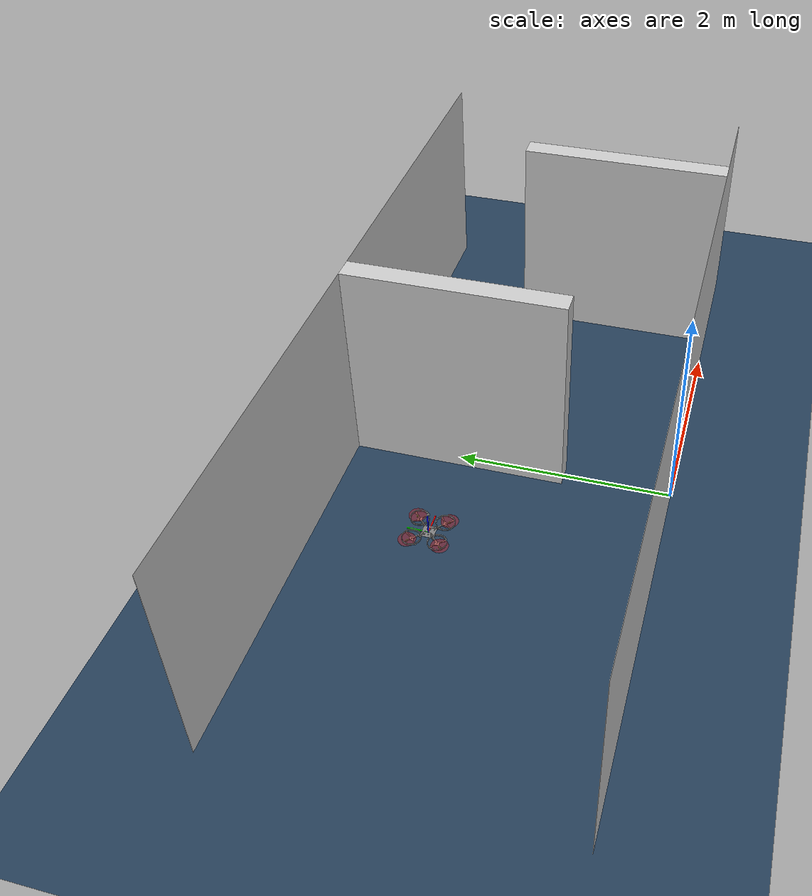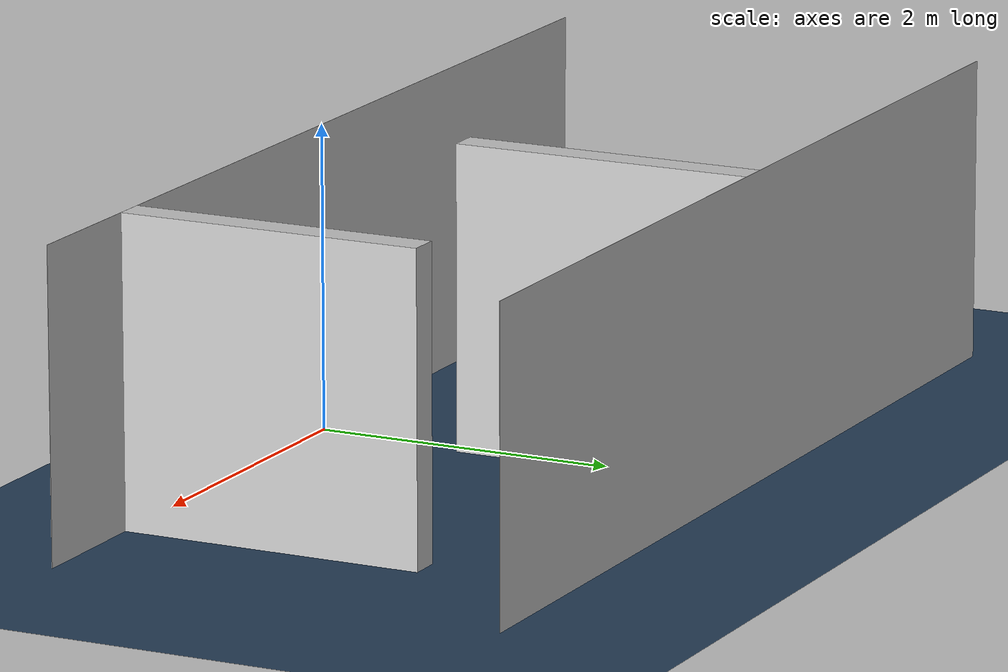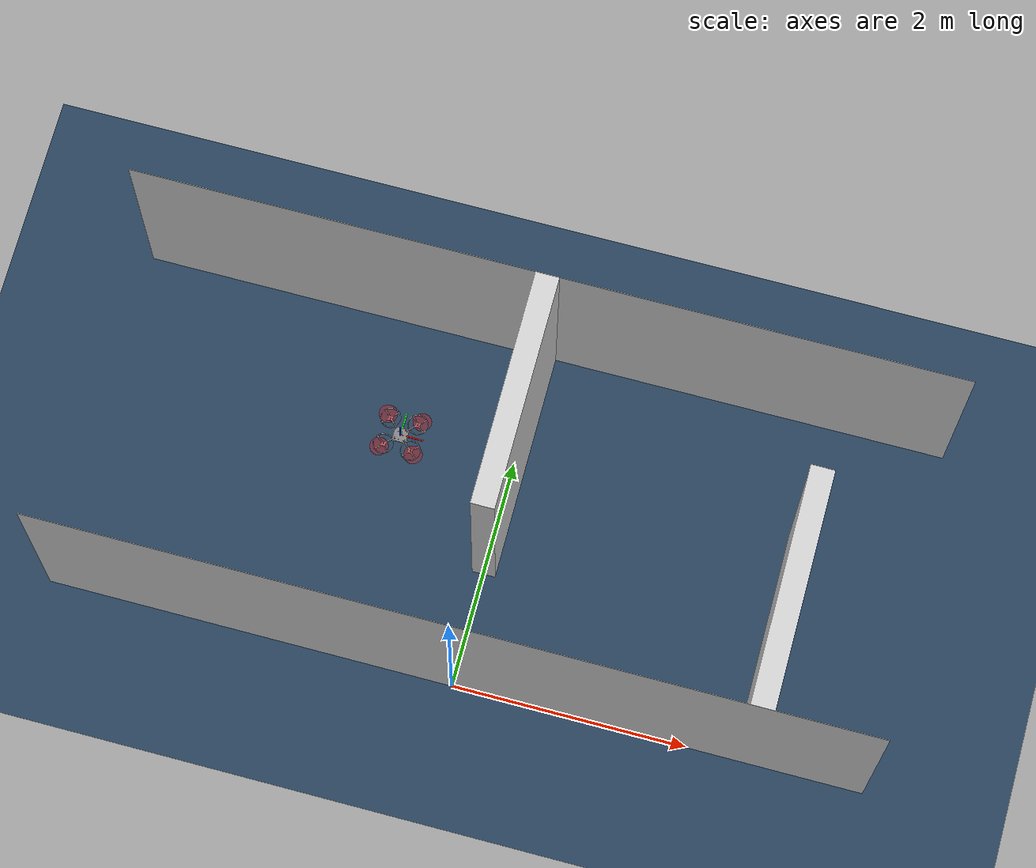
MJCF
<mujoco model="DART scene">
  <include file="dart.xml"/>

  <statistic center="0 0 0.1" extent="0.6" meansize=".05"/>

  <visual>
    <headlight diffuse="0.6 0.6 0.6" ambient="0.3 0.3 0.3" specular="0 0 0"/>
    <rgba haze="0.15 0.25 0.35 1"/>
    <global azimuth="-20" elevation="-20" ellipsoidinertia="true"/>
  </visual>

  <asset>
    <texture type="skybox" builtin="gradient" rgb1="0.3 0.5 0.7" rgb2="0 0 0" width="512" height="3072"/>
    <texture type="2d" name="groundplane" builtin="checker" mark="edge" rgb1="0.2 0.3 0.4" rgb2="0.1 0.2 0.3"
      markrgb="0.8 0.8 0.8" width="300" height="300"/>
    <material name="groundplane" texture="groundplane" texuniform="true" texrepeat="5 5" reflectance="0.2"/>
  </asset>

  <worldbody>
    <light pos="0 0 1.5" dir="0 0 -1" directional="true"/>
    <geom name="floor" size="0 0 0.05" type="plane" material="groundplane" solimp=".99 .99 .01" solref="0.001 1"/>
  </worldbody>
</mujoco>

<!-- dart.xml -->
<mujoco model="dart">
	<compiler inertiafromgeom="false" coordinate="local"/>
	<option	timestep="0.005" gravity="0 0 -9.81" density="1" viscosity="1e-5" integrator="RK4" />

	<asset>
		<mesh name="DART_mesh" file="dart2.stl" scale="0.001 0.001 0.001"/>
	</asset>

	<worldbody>
		<body name="quadrotor" pos="-1.0 2.0 0.0125">
			<inertial pos="0.0 0.0 0.0" mass="1.25" diaginertia="0.0025 0.0025 0.0045" />

			<geom type="mesh" mesh="DART_mesh" pos="-0.23 0.195 .015" quat=".6705 0.6705 -0.2244 -.2244 " solimp=".7 .7 .1" solref="0.1 1"/>

			<joint name="root"   type="free" damping="0" armature="0" pos="0.0 0.0 0.0" />

			<!-- Motor sites to attach motor actuators -->
            <site name="motor0" type="cylinder" pos="0.15 -0.15 0.01"  size="0.01 0.0025"  quat = "1.0 0.0 0.0 0." rgba="0.3 0.8 0.3 1"/>
            <site name="motor1" type="cylinder" pos="-0.15 0.15 0.01"  size="0.01 0.0025"  quat = "1.0 0.0 0.0 0." rgba="0.3 0.8 0.3 1"/>
            <site name="motor2" type="cylinder" pos="0.15 0.15 0.01"  size="0.01 0.0025"  quat = "1.0 0.0 0.0 0." rgba="0.3 0.8 0.3 1"/>
            <site name="motor3" type="cylinder" pos="-0.15 -0.15 0.01"  size="0.01 0.0025"  quat = "1.0 0.0 0.0 0." rgba="0.3 0.8 0.3 1"/>

			<!-- Thruster geometries for collisions since site's are excluded from collision checking -->
            <geom name="thruster0" type="cylinder" pos="0.15 -0.15 0.025" size="0.08 0.0025"  quat = "1.0 0.0 0.0 0." rgba="1 0.0 0.0 .3" mass = ".025"/>
            <geom name="thruster1" type="cylinder" pos="-0.15 0.15 0.025" size="0.08 0.0025"  quat = "1.0 0.0 0.0 0." rgba="1 0.0 0.0 .3" mass = ".025"/>
            <geom name="thruster2" type="cylinder" pos="0.15 0.15 0.025" size="0.08 0.0025"  quat = "1.0 0.0 0.0 0." rgba="1 0 0.0 .3" mass = ".025"/>
            <geom name="thruster3" type="cylinder" pos="-0.15 -0.15 0.025" size="0.08 0.0025"  quat = "1.0 0.0 0.0 0." rgba="1 0. 0.0 .3" mass = ".025"/>

            <!-- Visualization of the coordinate frame -->
			<site name="qcX" type="box" pos="0.1 0.0 0.0" size="0.1 0.005 0.005"  quat = " 1.000  0.0  0.0    0."     rgba="1 0 0 1" />
			<site name="qcY" type="box" pos="0.0 0.1 0.0" size="0.1 0.005 0.005"  quat = " 0.707  0.0  0.0    0.707"  rgba="0 1 0 1" />
			<site name="qcZ" type="box" pos="0.0 0.0 0.1" size="0.1 0.005 0.005"  quat = "-0.707  0.0  0.707  0."     rgba="0 0 1 1" />
			<camera name="quad_cam" pos="-1.5 0.0 1.5" xyaxes="0 -1 0 1 0 1" mode="track"/>
		</body>

		<body name="wall1" pos= "0.0 0.0 1.0">
			<inertial pos="0.0 0.0 0.0" mass="300.0" diaginertia="100.0 100.0 100.0" />
			<geom name="wall_geom1" friction="0.05 0.005 0.0001" type="box" pos=" 0.0 0.0 0.0" size=".001 3.5 1.0"  quat = "0.7071068 0.0 0.0 0.7071068" solimp=".95 .99 .001" solref="0.01 0.1" rgba="0.8 0.8 0.8 1.0" />
		</body>

		<body name="wall2" pos= "0.0 3.0 1.0">
			<inertial pos="0.0 0.0 0.0" mass="300.0" diaginertia="100.0 100.0 100.0" />
			<geom name="wall_geom2" friction="0.05 0.005 0.0001" type="box" pos=" 0.0 0.0 0.0" size=".001 3.5 1.0"  quat = "0.7071068 0.0 0.0 0.7071068" solimp=".99 .99 .001" solref="0.01 0.11" rgba="0.8 0.8 0.8 1.0" />
		</body>

        <body name="wall3" pos= "0.0 2.0 1.0">
            <inertial pos="0.0 0.0 0.0" mass="300.0" diaginertia="100.0 100.0 100.0" />
            <geom name="wall_geom3" type="box" pos=" 0.0 0.0 0.0" size=".1 1.0 1.0"  quat = "1.0 0.0 0.0 0.0" solimp=".7 .7 .1" solref="0.1 1" rgba="0.8 0.8 0.8 1.0" />
        </body>

        <body name="wall4" pos="2.5 1.0 1.0">
            <inertial pos="0.0 0.0 0.0" mass="300.0" diaginertia="100.0 100.0 100.0" />
            <geom name="wall_geom4" type="box" pos=" 0.0 0.0 0.0" size=".1 1.0 1.0"  quat = "1.0 0.0 0.0 0.0" solimp=".7 .7 .1" solref="0.1 1" rgba="0.8 0.8 0.8 1.0" />
        </body>

	</worldbody>
    <actuator>
        <motor ctrllimited="true" ctrlrange="0.0 7" gear="0  0. 1. 0. 0.  -0.016" site="motor0"/>
        <motor ctrllimited="true" ctrlrange="0.0 7" gear="0  0. 1. 0. 0.  -0.016" site="motor1"/>
        <motor ctrllimited="true" ctrlrange="0.0 7" gear="0  0. 1. 0. 0.  0.016" site="motor2"/>
        <motor ctrllimited="true" ctrlrange="0.0 7" gear="0  0. 1. 0. 0.  0.016" site="motor3"/>
	</actuator>
</mujoco>
